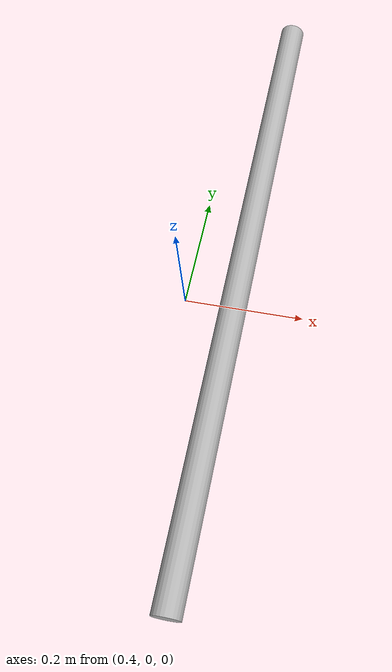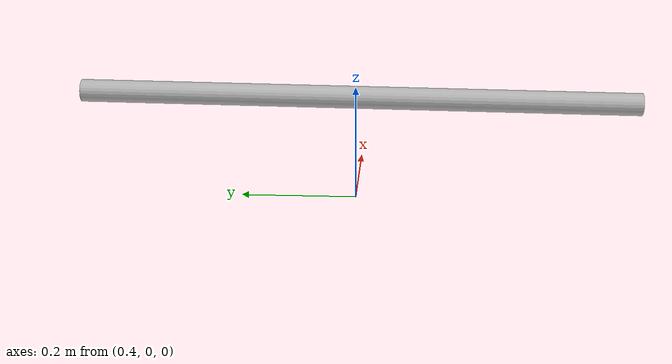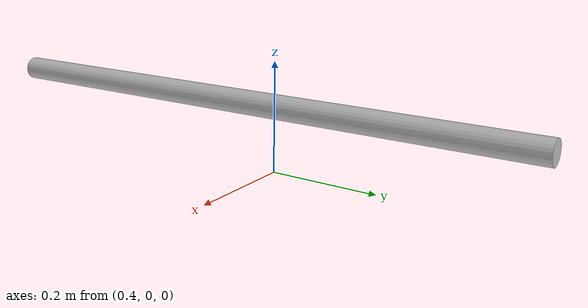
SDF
<?xml version="1.0"?>
<sdf version="1.4">
  <model name="bar_0.15">
    <pose>0.5 0 0.15 1.58 0 0</pose>
    <static>true</static>

    <link name="bar">
      <visual name="pipe_visual">
        <geometry>
          <cylinder>
            <radius>0.02</radius>
            <length>1.0</length>
          </cylinder>
        </geometry>
      </visual>
      <collision name="bar_collision">
        <geometry>
          <cylinder>
            <radius>0.02</radius>
            <length>1.0</length>
          </cylinder>
        </geometry>
      </collision>
    </link>

  </model>
</sdf>
